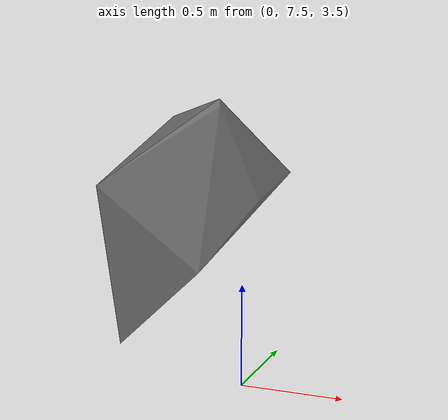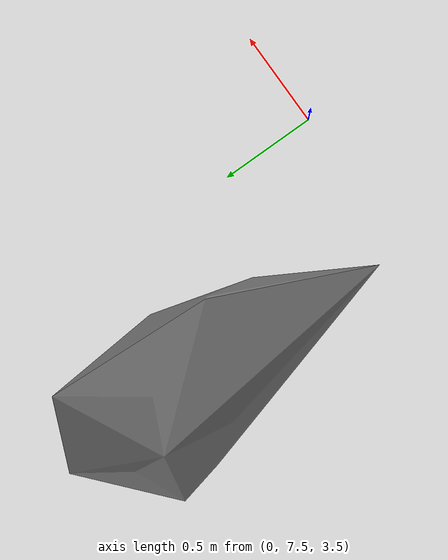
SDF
<sdf version="1.8">
 <model name="blue_mountains">
  <static>true</static>
  <link name="forest_19_20">
   <collision name="tree_21_trunk">
    <pose>-1.102671 8.569006 1.167863 0 0 -2.883827</pose>
    <geometry><cylinder><radius>0.05058558</radius><length>2.751049</length></cylinder></geometry>
   </collision>
   <collision name="plant_21_crown_0">
    <pose>-1.083105 8.574164 -0.2076609 0 0 -2.883827</pose>
    <geometry>
     <mesh>
      <uri>model://blue_mountains/meshes/canopy_2_0.dae</uri>
      <scale>0.2023423 0.2023423 0.2024094</scale>
     </mesh>
    </geometry>
   </collision>
   <collision name="plant_21_crown_1">
    <pose>-1.083105 8.574164 -0.2076609 0 0 -2.883827</pose>
    <geometry>
     <mesh>
      <uri>model://blue_mountains/meshes/canopy_2_1.dae</uri>
      <scale>0.2023423 0.2023423 0.2024094</scale>
     </mesh>
    </geometry>
   </collision>
   <collision name="tree_47_trunk">
    <pose>-4.728554 9.807187 1.048892 0 0 0.4363555</pose>
    <geometry><cylinder><radius>0.0471149</radius><length>2.971962</length></cylinder></geometry>
   </collision>
   <collision name="plant_47_crown_0">
    <pose>-4.745634 9.799222 -0.437089 0 0 0.4363555</pose>
    <geometry>
     <mesh>
      <uri>model://blue_mountains/meshes/canopy_1_0.dae</uri>
      <scale>0.1884596 0.1884596 0.2195116</scale>
     </mesh>
    </geometry>
   </collision>
   <collision name="plant_47_crown_1">
    <pose>-4.745634 9.799222 -0.437089 0 0 0.4363555</pose>
    <geometry>
     <mesh>
      <uri>model://blue_mountains/meshes/canopy_1_1.dae</uri>
      <scale>0.1884596 0.1884596 0.2195116</scale>
     </mesh>
    </geometry>
   </collision>
   <collision name="tree_72_trunk">
    <pose>-4.351365 5.940542 5.388988 0 0 1.388229</pose>
    <geometry><cylinder><radius>0.03739097</radius><length>2.164746</length></cylinder></geometry>
   </collision>
   <collision name="plant_72_crown_0">
    <pose>-4.35408 5.925835 4.306615 0 0 1.388229</pose>
    <geometry>
     <mesh>
      <uri>model://blue_mountains/meshes/canopy_1_0.dae</uri>
      <scale>0.1495639 0.1495639 0.1598899</scale>
     </mesh>
    </geometry>
   </collision>
   <collision name="plant_72_crown_1">
    <pose>-4.35408 5.925835 4.306615 0 0 1.388229</pose>
    <geometry>
     <mesh>
      <uri>model://blue_mountains/meshes/canopy_1_1.dae</uri>
      <scale>0.1495639 0.1495639 0.1598899</scale>
     </mesh>
    </geometry>
   </collision>
   <collision name="tree_88_trunk">
    <pose>-1.814598 2.225077 1.511171 0 0 -2.967288</pose>
    <geometry><cylinder><radius>0.0492739</radius><length>3.146854</length></cylinder></geometry>
   </collision>
   <collision name="plant_88_crown_0">
    <pose>-1.795187 2.228495 -0.06225634 0 0 -2.967288</pose>
    <geometry>
     <mesh>
      <uri>model://blue_mountains/meshes/canopy_4_0.dae</uri>
      <scale>0.1970956 0.1970956 0.2344931</scale>
     </mesh>
    </geometry>
   </collision>
   <collision name="plant_88_crown_1">
    <pose>-1.795187 2.228495 -0.06225634 0 0 -2.967288</pose>
    <geometry>
     <mesh>
      <uri>model://blue_mountains/meshes/canopy_4_1.dae</uri>
      <scale>0.1970956 0.1970956 0.2344931</scale>
     </mesh>
    </geometry>
   </collision>
   <collision name="tree_99_trunk">
    <pose>-3.893366 0.3449668 1.19177 0 0 -0.384365</pose>
    <geometry><cylinder><radius>0.05909503</radius><length>2.834598</length></cylinder></geometry>
   </collision>
   <collision name="plant_99_crown_0">
    <pose>-3.915279 0.3538303 -0.2255297 0 0 -0.384365</pose>
    <geometry>
     <mesh>
      <uri>model://blue_mountains/meshes/canopy_3_0.dae</uri>
      <scale>0.2363801 0.2363801 0.2107392</scale>
     </mesh>
    </geometry>
   </collision>
   <collision name="plant_99_crown_1">
    <pose>-3.915279 0.3538303 -0.2255297 0 0 -0.384365</pose>
    <geometry>
     <mesh>
      <uri>model://blue_mountains/meshes/canopy_3_1.dae</uri>
      <scale>0.2363801 0.2363801 0.2107392</scale>
     </mesh>
    </geometry>
   </collision>
   <collision name="tree_127_trunk">
    <pose>-6.829556 5.047367 0.9270932 0 0 -0.05675346</pose>
    <geometry><cylinder><radius>0.03928067</radius><length>2.134997</length></cylinder></geometry>
   </collision>
   <collision name="plant_127_crown_0">
    <pose>-6.845243 5.048258 -0.1404054 0 0 -0.05675346</pose>
    <geometry>
     <mesh>
      <uri>model://blue_mountains/meshes/canopy_7_0.dae</uri>
      <scale>0.1571227 0.1571227 0.1605226</scale>
     </mesh>
    </geometry>
   </collision>
   <collision name="plant_127_crown_1">
    <pose>-6.845243 5.048258 -0.1404054 0 0 -0.05675346</pose>
    <geometry>
     <mesh>
      <uri>model://blue_mountains/meshes/canopy_7_1.dae</uri>
      <scale>0.1571227 0.1571227 0.1605226</scale>
     </mesh>
    </geometry>
   </collision>
   <collision name="tree_134_trunk">
    <pose>-3.720582 9.982557 0.7929405 0 0 1.700683</pose>
    <geometry><cylinder><radius>0.04887679</radius><length>2.298517</length></cylinder></geometry>
   </collision>
   <collision name="plant_134_crown_0">
    <pose>-3.71805 9.963171 -0.3563178 0 0 1.700683</pose>
    <geometry>
     <mesh>
      <uri>model://blue_mountains/meshes/canopy_4_0.dae</uri>
      <scale>0.1955072 0.1955072 0.1712778</scale>
     </mesh>
    </geometry>
   </collision>
   <collision name="plant_134_crown_1">
    <pose>-3.71805 9.963171 -0.3563178 0 0 1.700683</pose>
    <geometry>
     <mesh>
      <uri>model://blue_mountains/meshes/canopy_4_1.dae</uri>
      <scale>0.1955072 0.1955072 0.1712778</scale>
     </mesh>
    </geometry>
   </collision>
   <collision name="tree_147_trunk">
    <pose>-5.762739 5.019335 5.462347 0 0 2.113235</pose>
    <geometry><cylinder><radius>0.0400218</radius><length>2.337094</length></cylinder></geometry>
   </collision>
   <collision name="plant_147_crown_0">
    <pose>-5.754475 5.005625 4.2938 0 0 2.113235</pose>
    <geometry>
     <mesh>
      <uri>model://blue_mountains/meshes/canopy_1_0.dae</uri>
      <scale>0.1600872 0.1600872 0.1726197</scale>
     </mesh>
    </geometry>
   </collision>
   <collision name="plant_147_crown_1">
    <pose>-5.754475 5.005625 4.2938 0 0 2.113235</pose>
    <geometry>
     <mesh>
      <uri>model://blue_mountains/meshes/canopy_1_1.dae</uri>
      <scale>0.1600872 0.1600872 0.1726197</scale>
     </mesh>
    </geometry>
   </collision>
   <collision name="tree_162_trunk">
    <pose>-7.877392 3.606184 4.547551 0 0 1.262362</pose>
    <geometry><cylinder><radius>0.02208475</radius><length>1.164017</length></cylinder></geometry>
   </collision>
   <collision name="plant_162_crown_0">
    <pose>-7.880074 3.597767 3.965543 0 0 1.262362</pose>
    <geometry>
     <mesh>
      <uri>model://blue_mountains/meshes/canopy_1_0.dae</uri>
      <scale>0.08833898 0.08833898 0.08597527</scale>
     </mesh>
    </geometry>
   </collision>
   <collision name="plant_162_crown_1">
    <pose>-7.880074 3.597767 3.965543 0 0 1.262362</pose>
    <geometry>
     <mesh>
      <uri>model://blue_mountains/meshes/canopy_1_1.dae</uri>
      <scale>0.08833898 0.08833898 0.08597527</scale>
     </mesh>
    </geometry>
   </collision>
   <collision name="tree_165_trunk">
    <pose>-0.1682738 8.9829 0.8786737 0 0 -2.84717</pose>
    <geometry><cylinder><radius>0.03850165</radius><length>1.900051</length></cylinder></geometry>
   </collision>
   <collision name="plant_165_crown_0">
    <pose>-0.1535358 8.98737 -0.07135201 0 0 -2.84717</pose>
    <geometry>
     <mesh>
      <uri>model://blue_mountains/meshes/canopy_0_0.dae</uri>
      <scale>0.1540066 0.1540066 0.1401277</scale>
     </mesh>
    </geometry>
   </collision>
   <collision name="plant_165_crown_1">
    <pose>-0.1535358 8.98737 -0.07135201 0 0 -2.84717</pose>
    <geometry>
     <mesh>
      <uri>model://blue_mountains/meshes/canopy_0_1.dae</uri>
      <scale>0.1540066 0.1540066 0.1401277</scale>
     </mesh>
    </geometry>
   </collision>
   <collision name="tree_182_trunk">
    <pose>-5.819386 7.725551 4.293573 0 0 2.616171</pose>
    <geometry><cylinder><radius>0.01943044</radius><length>0.9006339</length></cylinder></geometry>
   </collision>
   <collision name="plant_182_crown_0">
    <pose>-5.812662 7.721653 3.843256 0 0 2.616171</pose>
    <geometry>
     <mesh>
      <uri>model://blue_mountains/meshes/canopy_1_0.dae</uri>
      <scale>0.07772177 0.07772177 0.06652156</scale>
     </mesh>
    </geometry>
   </collision>
   <collision name="plant_182_crown_1">
    <pose>-5.812662 7.721653 3.843256 0 0 2.616171</pose>
    <geometry>
     <mesh>
      <uri>model://blue_mountains/meshes/canopy_1_1.dae</uri>
      <scale>0.07772177 0.07772177 0.06652156</scale>
     </mesh>
    </geometry>
   </collision>
   <collision name="tree_217_trunk">
    <pose>-5.726401 7.29657 4.732283 0 0 -1.367181</pose>
    <geometry><cylinder><radius>0.0267048</radius><length>1.289462</length></cylinder></geometry>
   </collision>
   <collision name="plant_217_crown_0">
    <pose>-5.728561 7.307032 4.087552 0 0 -1.367181</pose>
    <geometry>
     <mesh>
      <uri>model://blue_mountains/meshes/canopy_3_0.dae</uri>
      <scale>0.1068192 0.1068192 0.09586553</scale>
     </mesh>
    </geometry>
   </collision>
   <collision name="plant_217_crown_1">
    <pose>-5.728561 7.307032 4.087552 0 0 -1.367181</pose>
    <geometry>
     <mesh>
      <uri>model://blue_mountains/meshes/canopy_3_1.dae</uri>
      <scale>0.1068192 0.1068192 0.09586553</scale>
     </mesh>
    </geometry>
   </collision>
   <collision name="tree_235_trunk">
    <pose>-9.765439 9.407342 2.708127 0 0 -1.38791</pose>
    <geometry><cylinder><radius>0.06944254</radius><length>3.20015</length></cylinder></geometry>
   </collision>
   <collision name="plant_235_crown_0">
    <pose>-9.770491 9.434656 1.108052 0 0 -1.38791</pose>
    <geometry>
     <mesh>
      <uri>model://blue_mountains/meshes/canopy_4_0.dae</uri>
      <scale>0.2777701 0.2777701 0.2384645</scale>
     </mesh>
    </geometry>
   </collision>
   <collision name="plant_235_crown_1">
    <pose>-9.770491 9.434656 1.108052 0 0 -1.38791</pose>
    <geometry>
     <mesh>
      <uri>model://blue_mountains/meshes/canopy_4_1.dae</uri>
      <scale>0.2777701 0.2777701 0.2384645</scale>
     </mesh>
    </geometry>
   </collision>
   <collision name="tree_248_trunk">
    <pose>-6.001359 1.546733 3.071622 0 0 1.175668</pose>
    <geometry><cylinder><radius>0.02428573</radius><length>1.316628</length></cylinder></geometry>
   </collision>
   <collision name="plant_248_crown_0">
    <pose>-6.005098 1.537767 2.413308 0 0 1.175668</pose>
    <geometry>
     <mesh>
      <uri>model://blue_mountains/meshes/canopy_2_0.dae</uri>
      <scale>0.09714291 0.09714291 0.09687143</scale>
     </mesh>
    </geometry>
   </collision>
   <collision name="plant_248_crown_1">
    <pose>-6.005098 1.537767 2.413308 0 0 1.175668</pose>
    <geometry>
     <mesh>
      <uri>model://blue_mountains/meshes/canopy_2_1.dae</uri>
      <scale>0.09714291 0.09714291 0.09687143</scale>
     </mesh>
    </geometry>
   </collision>
   <collision name="tree_257_trunk">
    <pose>-4.896837 9.635756 0.585037 0 0 0.1767766</pose>
    <geometry><cylinder><radius>0.03518056</radius><length>2.061004</length></cylinder></geometry>
   </collision>
   <collision name="plant_257_crown_0">
    <pose>-4.91069 9.633282 -0.4454648 0 0 0.1767766</pose>
    <geometry>
     <mesh>
      <uri>model://blue_mountains/meshes/canopy_2_0.dae</uri>
      <scale>0.1407222 0.1407222 0.1516391</scale>
     </mesh>
    </geometry>
   </collision>
   <collision name="plant_257_crown_1">
    <pose>-4.91069 9.633282 -0.4454648 0 0 0.1767766</pose>
    <geometry>
     <mesh>
      <uri>model://blue_mountains/meshes/canopy_2_1.dae</uri>
      <scale>0.1407222 0.1407222 0.1516391</scale>
     </mesh>
    </geometry>
   </collision>
   <collision name="tree_258_trunk">
    <pose>-5.514729 2.519833 4.24614 0 0 0.2721232</pose>
    <geometry><cylinder><radius>0.03252373</radius><length>1.849615</length></cylinder></geometry>
   </collision>
   <collision name="plant_258_crown_0">
    <pose>-5.52726 2.516336 3.321333 0 0 0.2721232</pose>
    <geometry>
     <mesh>
      <uri>model://blue_mountains/meshes/canopy_0_0.dae</uri>
      <scale>0.1300949 0.1300949 0.136408</scale>
     </mesh>
    </geometry>
   </collision>
   <collision name="plant_258_crown_1">
    <pose>-5.52726 2.516336 3.321333 0 0 0.2721232</pose>
    <geometry>
     <mesh>
      <uri>model://blue_mountains/meshes/canopy_0_1.dae</uri>
      <scale>0.1300949 0.1300949 0.136408</scale>
     </mesh>
    </geometry>
   </collision>
   <collision name="tree_276_trunk">
    <pose>-3.361172 9.281459 1.011874 0 0 -2.036305</pose>
    <geometry><cylinder><radius>0.05254087</radius><length>2.553453</length></cylinder></geometry>
   </collision>
   <collision name="plant_276_crown_0">
    <pose>-3.351738 9.300239 -0.264852 0 0 -2.036305</pose>
    <geometry>
     <mesh>
      <uri>model://blue_mountains/meshes/canopy_6_0.dae</uri>
      <scale>0.2101635 0.2101635 0.1882205</scale>
     </mesh>
    </geometry>
   </collision>
   <collision name="plant_276_crown_1">
    <pose>-3.351738 9.300239 -0.264852 0 0 -2.036305</pose>
    <geometry>
     <mesh>
      <uri>model://blue_mountains/meshes/canopy_6_1.dae</uri>
      <scale>0.2101635 0.2101635 0.1882205</scale>
     </mesh>
    </geometry>
   </collision>
   <collision name="tree_309_trunk">
    <pose>-9.697362 0.1801341 1.475697 0 0 -0.07653314</pose>
    <geometry><cylinder><radius>0.0637892</radius><length>3.874053</length></cylinder></geometry>
   </collision>
   <collision name="plant_309_crown_0">
    <pose>-9.722803 0.182085 -0.4613299 0 0 -0.07653314</pose>
    <geometry>
     <mesh>
      <uri>model://blue_mountains/meshes/canopy_8_0.dae</uri>
      <scale>0.2551568 0.2551568 0.2882643</scale>
     </mesh>
    </geometry>
   </collision>
   <collision name="plant_309_crown_1">
    <pose>-9.722803 0.182085 -0.4613299 0 0 -0.07653314</pose>
    <geometry>
     <mesh>
      <uri>model://blue_mountains/meshes/canopy_8_1.dae</uri>
      <scale>0.2551568 0.2551568 0.2882643</scale>
     </mesh>
    </geometry>
   </collision>
   <collision name="tree_318_trunk">
    <pose>-5.394812 0.7453027 3.697255 0 0 1.072728</pose>
    <geometry><cylinder><radius>0.06477701</radius><length>4.08033</length></cylinder></geometry>
   </collision>
   <collision name="plant_318_crown_0">
    <pose>-5.40719 0.7225399 1.65709 0 0 1.072728</pose>
    <geometry>
     <mesh><uri>model://blue_mountains/meshes/canopy_2_0.dae</uri><scale>0.259108 0.259108 0.3002118</scale></mesh>
    </geometry>
   </collision>
   <collision name="plant_318_crown_1">
    <pose>-5.40719 0.7225399 1.65709 0 0 1.072728</pose>
    <geometry>
     <mesh><uri>model://blue_mountains/meshes/canopy_2_1.dae</uri><scale>0.259108 0.259108 0.3002118</scale></mesh>
    </geometry>
   </collision>
   <collision name="tree_331_trunk">
    <pose>-4.064372 8.235535 3.607962 0 0 -1.391266</pose>
    <geometry><cylinder><radius>0.03024672</radius><length>1.463685</length></cylinder></geometry>
   </collision>
   <collision name="plant_331_crown_0">
    <pose>-4.066532 8.247439 2.876119 0 0 -1.391266</pose>
    <geometry>
     <mesh>
      <uri>model://blue_mountains/meshes/canopy_5_0.dae</uri>
      <scale>0.1209869 0.1209869 0.1100173</scale>
     </mesh>
    </geometry>
   </collision>
   <collision name="plant_331_crown_1">
    <pose>-4.066532 8.247439 2.876119 0 0 -1.391266</pose>
    <geometry>
     <mesh>
      <uri>model://blue_mountains/meshes/canopy_5_1.dae</uri>
      <scale>0.1209869 0.1209869 0.1100173</scale>
     </mesh>
    </geometry>
   </collision>
   <collision name="tree_360_trunk">
    <pose>-9.262864 8.940355 3.349516 0 0 0.5114585</pose>
    <geometry><cylinder><radius>0.03028682</radius><length>1.891518</length></cylinder></geometry>
   </collision>
   <collision name="plant_360_crown_0">
    <pose>-9.273428 8.934425 2.403757 0 0 0.5114585</pose>
    <geometry>
     <mesh>
      <uri>model://blue_mountains/meshes/canopy_2_0.dae</uri>
      <scale>0.1211473 0.1211473 0.1391691</scale>
     </mesh>
    </geometry>
   </collision>
   <collision name="plant_360_crown_1">
    <pose>-9.273428 8.934425 2.403757 0 0 0.5114585</pose>
    <geometry>
     <mesh>
      <uri>model://blue_mountains/meshes/canopy_2_1.dae</uri>
      <scale>0.1211473 0.1211473 0.1391691</scale>
     </mesh>
    </geometry>
   </collision>
   <collision name="plant_806_crown_0">
    <pose>-6.255924 8.989315 2.707322 0 0 1.421151</pose>
    <geometry>
     <mesh>
      <uri>model://blue_mountains/meshes/canopy_12_0.dae</uri>
      <scale>0.03769303 0.03769303 0.02450047</scale>
     </mesh>
    </geometry>
   </collision>
   <collision name="plant_806_crown_1">
    <pose>-6.255924 8.989315 2.707322 0 0 1.421151</pose>
    <geometry>
     <mesh>
      <uri>model://blue_mountains/meshes/canopy_12_1.dae</uri>
      <scale>0.03769303 0.03769303 0.02450047</scale>
     </mesh>
    </geometry>
   </collision>
   <collision name="plant_808_crown_0">
    <pose>-5.395353 3.451048 3.868131 0 0 -1.030907</pose>
    <geometry>
     <mesh>
      <uri>model://blue_mountains/meshes/canopy_12_0.dae</uri>
      <scale>0.04114669 0.04114669 0.02674535</scale>
     </mesh>
    </geometry>
   </collision>
   <collision name="plant_808_crown_1">
    <pose>-5.395353 3.451048 3.868131 0 0 -1.030907</pose>
    <geometry>
     <mesh>
      <uri>model://blue_mountains/meshes/canopy_12_1.dae</uri>
      <scale>0.04114669 0.04114669 0.02674535</scale>
     </mesh>
    </geometry>
   </collision>
   <collision name="plant_809_crown_0">
    <pose>-2.515886 5.534895 -0.405165 0 0 0.0374712</pose>
    <geometry>
     <mesh>
      <uri>model://blue_mountains/meshes/canopy_12_0.dae</uri>
      <scale>0.04271653 0.04271653 0.02776575</scale>
     </mesh>
    </geometry>
   </collision>
   <collision name="plant_809_crown_1">
    <pose>-2.515886 5.534895 -0.405165 0 0 0.0374712</pose>
    <geometry>
     <mesh>
      <uri>model://blue_mountains/meshes/canopy_12_1.dae</uri>
      <scale>0.04271653 0.04271653 0.02776575</scale>
     </mesh>
    </geometry>
   </collision>
   <collision name="plant_810_crown_0">
    <pose>-6.353754 2.443579 3.424793 0 0 -1.414619</pose>
    <geometry>
     <mesh>
      <uri>model://blue_mountains/meshes/canopy_12_0.dae</uri>
      <scale>0.0351126 0.0351126 0.02282319</scale>
     </mesh>
    </geometry>
   </collision>
   <collision name="plant_810_crown_1">
    <pose>-6.353754 2.443579 3.424793 0 0 -1.414619</pose>
    <geometry>
     <mesh>
      <uri>model://blue_mountains/meshes/canopy_12_1.dae</uri>
      <scale>0.0351126 0.0351126 0.02282319</scale>
     </mesh>
    </geometry>
   </collision>
   <collision name="plant_811_crown_0">
    <pose>-6.074068 5.397911 4.344218 0 0 -0.01969654</pose>
    <geometry>
     <mesh>
      <uri>model://blue_mountains/meshes/canopy_12_0.dae</uri>
      <scale>0.03045823 0.03045823 0.01979785</scale>
     </mesh>
    </geometry>
   </collision>
   <collision name="plant_811_crown_1">
    <pose>-6.074068 5.397911 4.344218 0 0 -0.01969654</pose>
    <geometry>
     <mesh>
      <uri>model://blue_mountains/meshes/canopy_12_1.dae</uri>
      <scale>0.03045823 0.03045823 0.01979785</scale>
     </mesh>
    </geometry>
   </collision>
   <collision name="plant_812_crown_0">
    <pose>-5.296528 4.855061 4.32602 0 0 -0.4193146</pose>
    <geometry>
     <mesh>
      <uri>model://blue_mountains/meshes/canopy_12_0.dae</uri>
      <scale>0.05476334 0.05476334 0.03559617</scale>
     </mesh>
    </geometry>
   </collision>
   <collision name="plant_812_crown_1">
    <pose>-5.296528 4.855061 4.32602 0 0 -0.4193146</pose>
    <geometry>
     <mesh>
      <uri>model://blue_mountains/meshes/canopy_12_1.dae</uri>
      <scale>0.05476334 0.05476334 0.03559617</scale>
     </mesh>
    </geometry>
   </collision>
   <collision name="plant_813_crown_0">
    <pose>-6.669893 6.834358 4.429898 0 0 1.407878</pose>
    <geometry>
     <mesh>
      <uri>model://blue_mountains/meshes/canopy_12_0.dae</uri>
      <scale>0.04439227 0.04439227 0.02885497</scale>
     </mesh>
    </geometry>
   </collision>
   <collision name="plant_813_crown_1">
    <pose>-6.669893 6.834358 4.429898 0 0 1.407878</pose>
    <geometry>
     <mesh>
      <uri>model://blue_mountains/meshes/canopy_12_1.dae</uri>
      <scale>0.04439227 0.04439227 0.02885497</scale>
     </mesh>
    </geometry>
   </collision>
   <collision name="plant_814_crown_0">
    <pose>-5.92297 6.209539 4.39689 0 0 0.7936827</pose>
    <geometry>
     <mesh>
      <uri>model://blue_mountains/meshes/canopy_12_0.dae</uri>
      <scale>0.05601224 0.05601224 0.03640795</scale>
     </mesh>
    </geometry>
   </collision>
   <collision name="plant_814_crown_1">
    <pose>-5.92297 6.209539 4.39689 0 0 0.7936827</pose>
    <geometry>
     <mesh>
      <uri>model://blue_mountains/meshes/canopy_12_1.dae</uri>
      <scale>0.05601224 0.05601224 0.03640795</scale>
     </mesh>
    </geometry>
   </collision>
   <collision name="plant_815_crown_0">
    <pose>-5.72374 4.999689 4.316687 0 0 -0.4156636</pose>
    <geometry>
     <mesh>
      <uri>model://blue_mountains/meshes/canopy_12_0.dae</uri>
      <scale>0.02862827 0.02862827 0.01860838</scale>
     </mesh>
    </geometry>
   </collision>
   <collision name="plant_815_crown_1">
    <pose>-5.72374 4.999689 4.316687 0 0 -0.4156636</pose>
    <geometry>
     <mesh>
      <uri>model://blue_mountains/meshes/canopy_12_1.dae</uri>
      <scale>0.02862827 0.02862827 0.01860838</scale>
     </mesh>
    </geometry>
   </collision>
   <collision name="plant_816_crown_0">
    <pose>-6.736654 7.771622 3.792485 0 0 1.492724</pose>
    <geometry>
     <mesh>
      <uri>model://blue_mountains/meshes/canopy_12_0.dae</uri>
      <scale>0.04028607 0.04028607 0.02618595</scale>
     </mesh>
    </geometry>
   </collision>
   <collision name="plant_816_crown_1">
    <pose>-6.736654 7.771622 3.792485 0 0 1.492724</pose>
    <geometry>
     <mesh>
      <uri>model://blue_mountains/meshes/canopy_12_1.dae</uri>
      <scale>0.04028607 0.04028607 0.02618595</scale>
     </mesh>
    </geometry>
   </collision>
   <collision name="plant_818_crown_0">
    <pose>-3.081575 4.864931 -0.4045572 0 0 -0.1872881</pose>
    <geometry>
     <mesh>
      <uri>model://blue_mountains/meshes/canopy_12_0.dae</uri>
      <scale>0.04421959 0.04421959 0.02874274</scale>
     </mesh>
    </geometry>
   </collision>
   <collision name="plant_818_crown_1">
    <pose>-3.081575 4.864931 -0.4045572 0 0 -0.1872881</pose>
    <geometry>
     <mesh>
      <uri>model://blue_mountains/meshes/canopy_12_1.dae</uri>
      <scale>0.04421959 0.04421959 0.02874274</scale>
     </mesh>
    </geometry>
   </collision>
   <collision name="plant_819_crown_0">
    <pose>-9.676899 5.053249 3.518233 0 0 -2.963236</pose>
    <geometry>
     <mesh>
      <uri>model://blue_mountains/meshes/canopy_12_0.dae</uri>
      <scale>0.03155956 0.03155956 0.02051372</scale>
     </mesh>
    </geometry>
   </collision>
   <collision name="plant_819_crown_1">
    <pose>-9.676899 5.053249 3.518233 0 0 -2.963236</pose>
    <geometry>
     <mesh>
      <uri>model://blue_mountains/meshes/canopy_12_1.dae</uri>
      <scale>0.03155956 0.03155956 0.02051372</scale>
     </mesh>
    </geometry>
   </collision>
   <visual name="forest_visual">
    <geometry><mesh><uri>model://blue_mountains/meshes/forest_19_20.dae</uri></mesh></geometry>
    <cast_shadows>false</cast_shadows>
   </visual>
  </link>
 </model>
</sdf>
